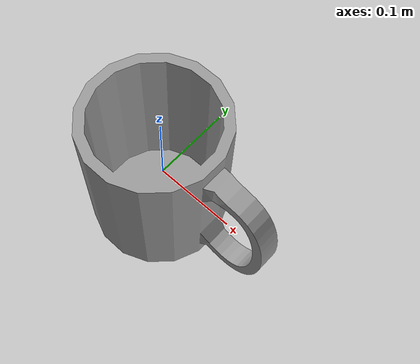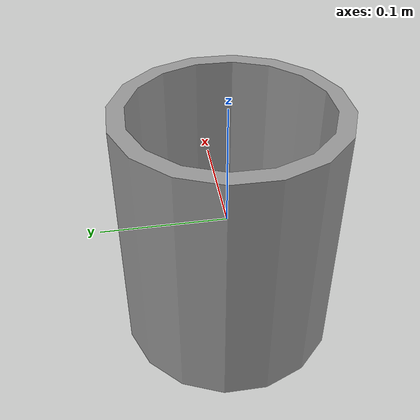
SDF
<?xml version='1.0'?>
<sdf version='1.6'>
  <model name='Mug'>
    <link name='link_0'>
      <inertial>
        <mass>0.2</mass>
        <inertia>
          <ixx>0.0333333</ixx>
          <ixy>0</ixy>
          <ixz>0</ixz>
          <iyy>0.0333333</iyy>
          <iyz>0</iyz>
          <izz>0.0333333</izz>
        </inertia>
        <pose frame=''>0 0 0 0 -0 0</pose>
      </inertial>
      <pose frame=''>0 0 0 0 -0 0</pose>
      <gravity>1</gravity>
      <self_collide>0</self_collide>
      <kinematic>0</kinematic>
      <enable_wind>0</enable_wind>
      <visual name='visual'>
        <pose frame=''>0 0 0 0 -0 0</pose>
        <geometry>
          <mesh>
            <uri>model://Mug/Mug.dae</uri>
            <scale>1 1 1</scale>
          </mesh>
        </geometry>
        <material>
          <lighting>1</lighting>
          <script>
            <uri>file://media/materials/scripts/gazebo.material</uri>
            <name>Gazebo/Grey</name>
          </script>
          <shader type='pixel'>
            <normal_map>__default__</normal_map>
          </shader>
          <ambient>0.3 0.3 0.3 1</ambient>
          <diffuse>0.7 0.7 0.7 1</diffuse>
          <specular>0.01 0.01 0.01 1</specular>
          <emissive>0 0 0 1</emissive>
        </material>
        <transparency>0</transparency>
        <cast_shadows>1</cast_shadows>
      </visual>
      <collision name='collision_2'>
        <laser_retro>0</laser_retro>
        <max_contacts>10</max_contacts>
        <pose frame=''>-0.01 0.01 0.03 0 -0 0</pose>
        <geometry>
          <sphere>
            <radius>0.08</radius>
          </sphere>
        </geometry>
        <surface>
          <friction>
            <ode>
              <mu>1</mu>
              <mu2>1</mu2>
              <fdir1>0 0 0</fdir1>
              <slip1>0</slip1>
              <slip2>0</slip2>
            </ode>
            <torsional>
              <coefficient>1</coefficient>
              <patch_radius>0</patch_radius>
              <surface_radius>0</surface_radius>
              <use_patch_radius>1</use_patch_radius>
              <ode>
                <slip>0</slip>
              </ode>
            </torsional>
          </friction>
          <bounce>
            <restitution_coefficient>0</restitution_coefficient>
            <threshold>1e+06</threshold>
          </bounce>
          <contact>
            <collide_without_contact>0</collide_without_contact>
            <collide_without_contact_bitmask>1</collide_without_contact_bitmask>
            <collide_bitmask>1</collide_bitmask>
            <ode>
              <soft_cfm>0</soft_cfm>
              <soft_erp>0.2</soft_erp>
              <kp>1e+13</kp>
              <kd>1</kd>
              <max_vel>0.01</max_vel>
              <min_depth>0</min_depth>
            </ode>
            <bullet>
              <split_impulse>1</split_impulse>
              <split_impulse_penetration_threshold>-0.01</split_impulse_penetration_threshold>
              <soft_cfm>0</soft_cfm>
              <soft_erp>0.2</soft_erp>
              <kp>1e+13</kp>
              <kd>1</kd>
            </bullet>
          </contact>
        </surface>
      </collision>
      <collision name='collision_4'>
        <laser_retro>0</laser_retro>
        <max_contacts>10</max_contacts>
        <pose frame=''>0.01 0.01 -0.1 0 -0 0</pose>
        <geometry>
          <box>
            <size>0.12 0.12 0.01</size>
          </box>
        </geometry>
        <surface>
          <friction>
            <ode>
              <mu>1</mu>
              <mu2>1</mu2>
              <fdir1>0 0 0</fdir1>
              <slip1>0</slip1>
              <slip2>0</slip2>
            </ode>
            <torsional>
              <coefficient>1</coefficient>
              <patch_radius>0</patch_radius>
              <surface_radius>0</surface_radius>
              <use_patch_radius>1</use_patch_radius>
              <ode>
                <slip>0</slip>
              </ode>
            </torsional>
          </friction>
          <bounce>
            <restitution_coefficient>0</restitution_coefficient>
            <threshold>1e+06</threshold>
          </bounce>
          <contact>
            <collide_without_contact>0</collide_without_contact>
            <collide_without_contact_bitmask>1</collide_without_contact_bitmask>
            <collide_bitmask>1</collide_bitmask>
            <ode>
              <soft_cfm>0</soft_cfm>
              <soft_erp>0.2</soft_erp>
              <kp>1e+13</kp>
              <kd>1</kd>
              <max_vel>0.01</max_vel>
              <min_depth>0</min_depth>
            </ode>
            <bullet>
              <split_impulse>1</split_impulse>
              <split_impulse_penetration_threshold>-0.01</split_impulse_penetration_threshold>
              <soft_cfm>0</soft_cfm>
              <soft_erp>0.2</soft_erp>
              <kp>1e+13</kp>
              <kd>1</kd>
            </bullet>
          </contact>
        </surface>
      </collision>
      <collision name='collision_6'>
        <laser_retro>0</laser_retro>
        <max_contacts>10</max_contacts>
        <pose frame=''>0.12 0 0.08 0 -0 0</pose>
        <geometry>
          <box>
            <size>0.11 0.01 0.01</size>
          </box>
        </geometry>
        <surface>
          <friction>
            <ode>
              <mu>1</mu>
              <mu2>1</mu2>
              <fdir1>0 0 0</fdir1>
              <slip1>0</slip1>
              <slip2>0</slip2>
            </ode>
            <torsional>
              <coefficient>1</coefficient>
              <patch_radius>0</patch_radius>
              <surface_radius>0</surface_radius>
              <use_patch_radius>1</use_patch_radius>
              <ode>
                <slip>0</slip>
              </ode>
            </torsional>
          </friction>
          <bounce>
            <restitution_coefficient>0</restitution_coefficient>
            <threshold>1e+06</threshold>
          </bounce>
          <contact>
            <collide_without_contact>0</collide_without_contact>
            <collide_without_contact_bitmask>1</collide_without_contact_bitmask>
            <collide_bitmask>1</collide_bitmask>
            <ode>
              <soft_cfm>0</soft_cfm>
              <soft_erp>0.2</soft_erp>
              <kp>1e+13</kp>
              <kd>1</kd>
              <max_vel>0.01</max_vel>
              <min_depth>0</min_depth>
            </ode>
            <bullet>
              <split_impulse>1</split_impulse>
              <split_impulse_penetration_threshold>-0.01</split_impulse_penetration_threshold>
              <soft_cfm>0</soft_cfm>
              <soft_erp>0.2</soft_erp>
              <kp>1e+13</kp>
              <kd>1</kd>
            </bullet>
          </contact>
        </surface>
      </collision>
      <collision name='collision_3'>
        <laser_retro>0</laser_retro>
        <max_contacts>10</max_contacts>
        <pose frame=''>-0.01 0.01 -0.02 0 -0 0</pose>
        <geometry>
          <sphere>
            <radius>0.08</radius>
          </sphere>
        </geometry>
        <surface>
          <friction>
            <ode>
              <mu>1</mu>
              <mu2>1</mu2>
              <fdir1>0 0 0</fdir1>
              <slip1>0</slip1>
              <slip2>0</slip2>
            </ode>
            <torsional>
              <coefficient>1</coefficient>
              <patch_radius>0</patch_radius>
              <surface_radius>0</surface_radius>
              <use_patch_radius>1</use_patch_radius>
              <ode>
                <slip>0</slip>
              </ode>
            </torsional>
          </friction>
          <bounce>
            <restitution_coefficient>0</restitution_coefficient>
            <threshold>1e+06</threshold>
          </bounce>
          <contact>
            <collide_without_contact>0</collide_without_contact>
            <collide_without_contact_bitmask>1</collide_without_contact_bitmask>
            <collide_bitmask>1</collide_bitmask>
            <ode>
              <soft_cfm>0</soft_cfm>
              <soft_erp>0.2</soft_erp>
              <kp>1e+13</kp>
              <kd>1</kd>
              <max_vel>0.01</max_vel>
              <min_depth>0</min_depth>
            </ode>
            <bullet>
              <split_impulse>1</split_impulse>
              <split_impulse_penetration_threshold>-0.01</split_impulse_penetration_threshold>
              <soft_cfm>0</soft_cfm>
              <soft_erp>0.2</soft_erp>
              <kp>1e+13</kp>
              <kd>1</kd>
            </bullet>
          </contact>
        </surface>
      </collision>
      <collision name='collision_1'>
        <laser_retro>0</laser_retro>
        <max_contacts>10</max_contacts>
        <pose frame=''>-0.01 0.01 0 0 -0 0</pose>
        <geometry>
          <sphere>
            <radius>0.08</radius>
          </sphere>
        </geometry>
        <surface>
          <friction>
            <ode>
              <mu>1</mu>
              <mu2>1</mu2>
              <fdir1>0 0 0</fdir1>
              <slip1>0</slip1>
              <slip2>0</slip2>
            </ode>
            <torsional>
              <coefficient>1</coefficient>
              <patch_radius>0</patch_radius>
              <surface_radius>0</surface_radius>
              <use_patch_radius>1</use_patch_radius>
              <ode>
                <slip>0</slip>
              </ode>
            </torsional>
          </friction>
          <bounce>
            <restitution_coefficient>0</restitution_coefficient>
            <threshold>1e+06</threshold>
          </bounce>
          <contact>
            <collide_without_contact>0</collide_without_contact>
            <collide_without_contact_bitmask>1</collide_without_contact_bitmask>
            <collide_bitmask>1</collide_bitmask>
            <ode>
              <soft_cfm>0</soft_cfm>
              <soft_erp>0.2</soft_erp>
              <kp>1e+13</kp>
              <kd>1</kd>
              <max_vel>0.01</max_vel>
              <min_depth>0</min_depth>
            </ode>
            <bullet>
              <split_impulse>1</split_impulse>
              <split_impulse_penetration_threshold>-0.01</split_impulse_penetration_threshold>
              <soft_cfm>0</soft_cfm>
              <soft_erp>0.2</soft_erp>
              <kp>1e+13</kp>
              <kd>1</kd>
            </bullet>
          </contact>
        </surface>
      </collision>
      <collision name='collision_5'>
        <laser_retro>0</laser_retro>
        <max_contacts>10</max_contacts>
        <pose frame=''>0.17 0 0 0 -0 0</pose>
        <geometry>
          <box>
            <size>0.01 0.01 0.18</size>
          </box>
        </geometry>
        <surface>
          <friction>
            <ode>
              <mu>1</mu>
              <mu2>1</mu2>
              <fdir1>0 0 0</fdir1>
              <slip1>0</slip1>
              <slip2>0</slip2>
            </ode>
            <torsional>
              <coefficient>1</coefficient>
              <patch_radius>0</patch_radius>
              <surface_radius>0</surface_radius>
              <use_patch_radius>1</use_patch_radius>
              <ode>
                <slip>0</slip>
              </ode>
            </torsional>
          </friction>
          <bounce>
            <restitution_coefficient>0</restitution_coefficient>
            <threshold>1e+06</threshold>
          </bounce>
          <contact>
            <collide_without_contact>0</collide_without_contact>
            <collide_without_contact_bitmask>1</collide_without_contact_bitmask>
            <collide_bitmask>1</collide_bitmask>
            <ode>
              <soft_cfm>0</soft_cfm>
              <soft_erp>0.2</soft_erp>
              <kp>1e+13</kp>
              <kd>1</kd>
              <max_vel>0.01</max_vel>
              <min_depth>0</min_depth>
            </ode>
            <bullet>
              <split_impulse>1</split_impulse>
              <split_impulse_penetration_threshold>-0.01</split_impulse_penetration_threshold>
              <soft_cfm>0</soft_cfm>
              <soft_erp>0.2</soft_erp>
              <kp>1e+13</kp>
              <kd>1</kd>
            </bullet>
          </contact>
        </surface>
      </collision>
      <collision name='collision_7'>
        <laser_retro>0</laser_retro>
        <max_contacts>10</max_contacts>
        <pose frame=''>0.12 0 -0.08 0 -0 0</pose>
        <geometry>
          <box>
            <size>0.09 0.01 0.01</size>
          </box>
        </geometry>
        <surface>
          <friction>
            <ode>
              <mu>1</mu>
              <mu2>1</mu2>
              <fdir1>0 0 0</fdir1>
              <slip1>0</slip1>
              <slip2>0</slip2>
            </ode>
            <torsional>
              <coefficient>1</coefficient>
              <patch_radius>0</patch_radius>
              <surface_radius>0</surface_radius>
              <use_patch_radius>1</use_patch_radius>
              <ode>
                <slip>0</slip>
              </ode>
            </torsional>
          </friction>
          <bounce>
            <restitution_coefficient>0</restitution_coefficient>
            <threshold>1e+06</threshold>
          </bounce>
          <contact>
            <collide_without_contact>0</collide_without_contact>
            <collide_without_contact_bitmask>1</collide_without_contact_bitmask>
            <collide_bitmask>1</collide_bitmask>
            <ode>
              <soft_cfm>0</soft_cfm>
              <soft_erp>0.2</soft_erp>
              <kp>1e+13</kp>
              <kd>1</kd>
              <max_vel>0.01</max_vel>
              <min_depth>0</min_depth>
            </ode>
            <bullet>
              <split_impulse>1</split_impulse>
              <split_impulse_penetration_threshold>-0.01</split_impulse_penetration_threshold>
              <soft_cfm>0</soft_cfm>
              <soft_erp>0.2</soft_erp>
              <kp>1e+13</kp>
              <kd>1</kd>
            </bullet>
          </contact>
        </surface>
      </collision>
    </link>
    <static>0</static>
    <allow_auto_disable>1</allow_auto_disable>
  </model>
</sdf>
